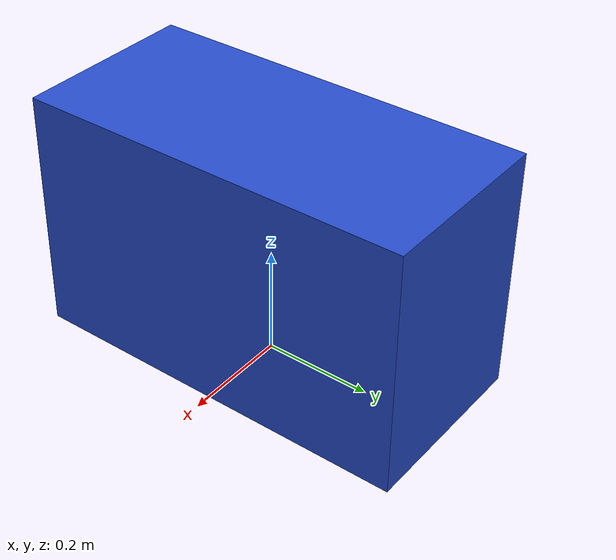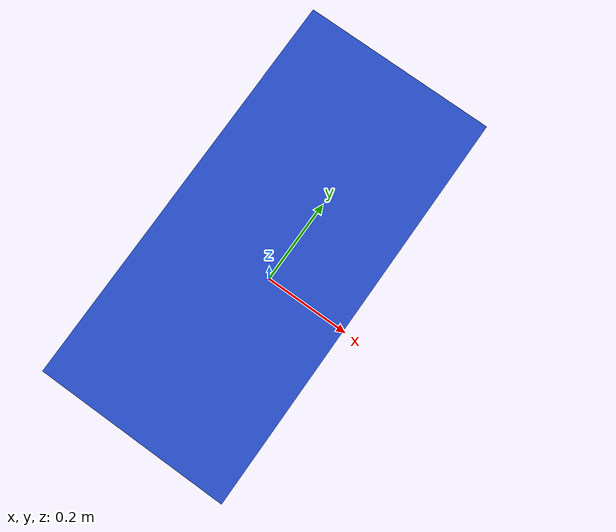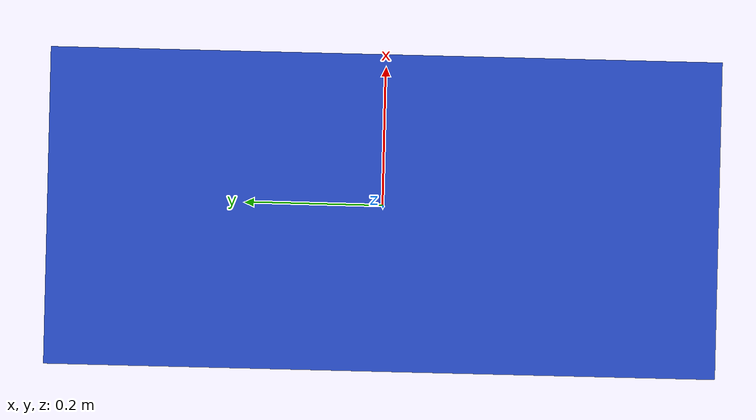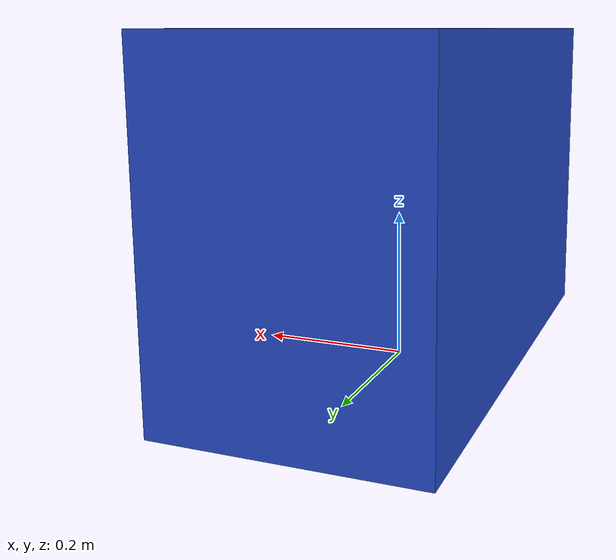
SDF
<?xml version='1.0'?>
<sdf version="1.6">
  <model name="blue_shelf">
    <static>true</static>
    <link name="link">
      <pose>0 0 0.225 0 0 0</pose>
      <collision name="collision">
        <geometry>
          <box>
            <size>0.34 0.72 0.45</size>
          </box>
        </geometry>
      </collision>
      <visual name="visual">
        <geometry>
          <box>
            <size>0.34 0.72 0.45</size>
          </box>
        </geometry>
        <material>
          <script>
            <uri>file://media/materials/scripts/gazebo.material</uri>
            <name>Gazebo/Blue</name>
          </script>
        </material>
      </visual>
    </link>
  </model>
</sdf>
